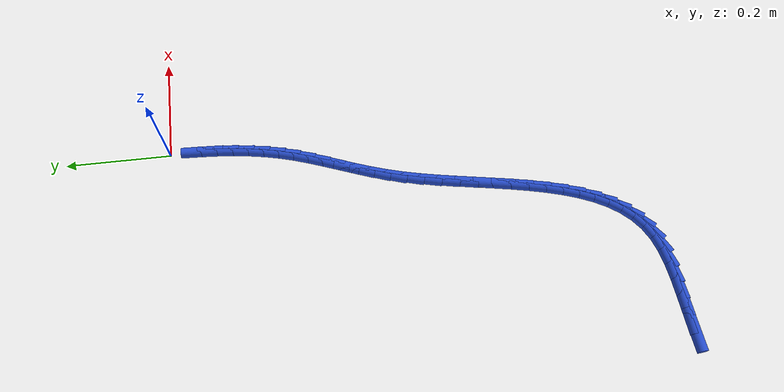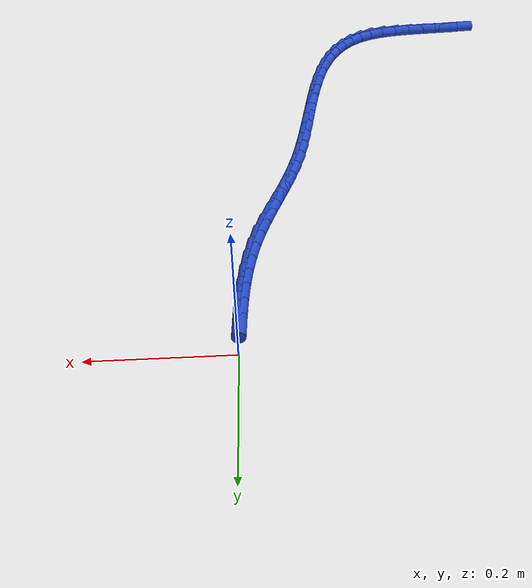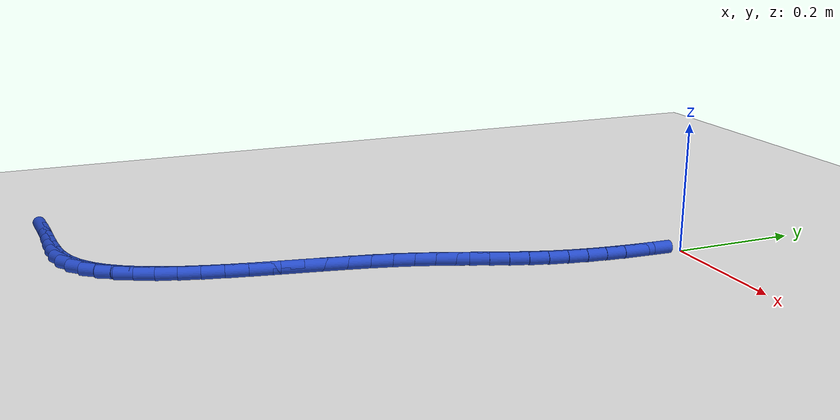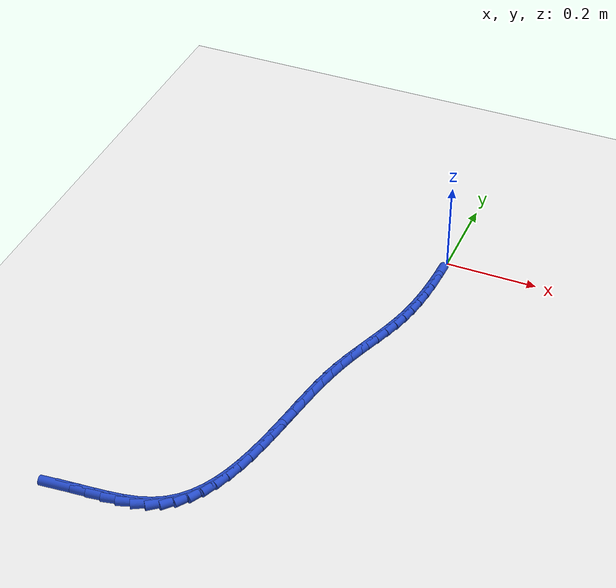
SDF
<sdf version="1.6">
 <world name="default">
  <model name="ground_plane">
   <static>1</static>
   <link name="link">
    <collision name="collision">
     <geometry><plane><normal>0 0 1</normal><size>100 100</size></plane></geometry>
     <surface><friction><ode><mu>100</mu><mu2>50</mu2></ode></friction></surface>
    </collision>
    <visual name="visual">
     <cast_shadows>0</cast_shadows>
     <geometry><plane><normal>0 0 1</normal><size>100 100</size></plane></geometry>
     <material>
      <script><uri>file://media/materials/scripts/gazebo.material</uri><name>Gazebo/WhiteGlow</name></script>
     </material>
    </visual>
   </link>
  </model>
  <model name="line">
   <link name="link_253">
    <pose>-0.4457957055428515 -0.910831914444147 0.01 0 1.57 0.09378508704343583</pose>
    <collision name="collision">
     <geometry><cylinder><radius>0.01</radius><length>0.08</length></cylinder></geometry>
    </collision>
    <visual name="visual">
     <material>
      <script><name>Gazebo/Blue</name><uri>file://media/materials/scripts/gazebo.material</uri></script>
     </material>
     <geometry><cylinder><radius>0.01</radius><length>0.08</length></cylinder></geometry>
    </visual>
   </link>
   <link name="link_254">
    <pose>-0.41372487961653465 -0.9078152996976164 0.01 0 1.57 0.07865819826071467</pose>
    <collision name="collision">
     <geometry><cylinder><radius>0.01</radius><length>0.08</length></cylinder></geometry>
    </collision>
    <visual name="visual">
     <material>
      <script><name>Gazebo/Blue</name><uri>file://media/materials/scripts/gazebo.material</uri></script>
     </material>
     <geometry><cylinder><radius>0.01</radius><length>0.08</length></cylinder></geometry>
    </visual>
   </link>
   <link name="link_255">
    <pose>-0.38184172162986924 -0.9053022429418041 0.01 0 1.57 0.09057604250113106</pose>
    <collision name="collision">
     <geometry><cylinder><radius>0.01</radius><length>0.08</length></cylinder></geometry>
    </collision>
    <visual name="visual">
     <material>
      <script><name>Gazebo/Blue</name><uri>file://media/materials/scripts/gazebo.material</uri></script>
     </material>
     <geometry><cylinder><radius>0.01</radius><length>0.08</length></cylinder></geometry>
    </visual>
   </link>
   <link name="link_256">
    <pose>-0.35068948913787124 -0.9024728553220365 0.01 0 1.57 0.13195519901484767</pose>
    <collision name="collision">
     <geometry><cylinder><radius>0.01</radius><length>0.08</length></cylinder></geometry>
    </collision>
    <visual name="visual">
     <material>
      <script><name>Gazebo/Blue</name><uri>file://media/materials/scripts/gazebo.material</uri></script>
     </material>
     <geometry><cylinder><radius>0.01</radius><length>0.08</length></cylinder></geometry>
    </visual>
   </link>
   <link name="link_257">
    <pose>-0.32081143969555664 -0.8985072479836409 0.01 0 1.57 0.20798140657950961</pose>
    <collision name="collision">
     <geometry><cylinder><radius>0.01</radius><length>0.08</length></cylinder></geometry>
    </collision>
    <visual name="visual">
     <material>
      <script><name>Gazebo/Blue</name><uri>file://media/materials/scripts/gazebo.material</uri></script>
     </material>
     <geometry><cylinder><radius>0.01</radius><length>0.08</length></cylinder></geometry>
    </visual>
   </link>
   <link name="link_258">
    <pose>-0.2927508308579414 -0.892585532071944 0.01 0 1.57 0.3263337513210692</pose>
    <collision name="collision">
     <geometry><cylinder><radius>0.01</radius><length>0.08</length></cylinder></geometry>
    </collision>
    <visual name="visual">
     <material>
      <script><name>Gazebo/Blue</name><uri>file://media/materials/scripts/gazebo.material</uri></script>
     </material>
     <geometry><cylinder><radius>0.01</radius><length>0.08</length></cylinder></geometry>
    </visual>
   </link>
   <link name="link_259">
    <pose>-0.26705092018004173 -0.8838878187322726 0.01 0 1.57 0.4907390667734935</pose>
    <collision name="collision">
     <geometry><cylinder><radius>0.01</radius><length>0.08</length></cylinder></geometry>
    </collision>
    <visual name="visual">
     <material>
      <script><name>Gazebo/Blue</name><uri>file://media/materials/scripts/gazebo.material</uri></script>
     </material>
     <geometry><cylinder><radius>0.01</radius><length>0.08</length></cylinder></geometry>
    </visual>
   </link>
   <link name="link_260">
    <pose>-0.24419711457930865 -0.8716761652776995 0.01 0 1.57 0.6671793209381301</pose>
    <collision name="collision">
     <geometry><cylinder><radius>0.01</radius><length>0.08</length></cylinder></geometry>
    </collision>
    <visual name="visual">
     <material>
      <script><name>Gazebo/Blue</name><uri>file://media/materials/scripts/gazebo.material</uri></script>
     </material>
     <geometry><cylinder><radius>0.01</radius><length>0.08</length></cylinder></geometry>
    </visual>
   </link>
   <link name="link_261">
    <pose>-0.2241819645160104 -0.8559107664941925 0.01 0 1.57 0.8285261775974498</pose>
    <collision name="collision">
     <geometry><cylinder><radius>0.01</radius><length>0.08</length></cylinder></geometry>
    </collision>
    <visual name="visual">
     <material>
      <script><name>Gazebo/Blue</name><uri>file://media/materials/scripts/gazebo.material</uri></script>
     </material>
     <geometry><cylinder><radius>0.01</radius><length>0.08</length></cylinder></geometry>
    </visual>
   </link>
   <link name="link_262">
    <pose>-0.20674869986701105 -0.8369049829617377 0.01 0 1.57 0.9674830487945775</pose>
    <collision name="collision">
     <geometry><cylinder><radius>0.01</radius><length>0.08</length></cylinder></geometry>
    </collision>
    <visual name="visual">
     <material>
      <script><name>Gazebo/Blue</name><uri>file://media/materials/scripts/gazebo.material</uri></script>
     </material>
     <geometry><cylinder><radius>0.01</radius><length>0.08</length></cylinder></geometry>
    </visual>
   </link>
   <link name="link_263">
    <pose>-0.19163861912200644 -0.8149749110949396 0.01 0 1.57 1.0821558583801782</pose>
    <collision name="collision">
     <geometry><cylinder><radius>0.01</radius><length>0.08</length></cylinder></geometry>
    </collision>
    <visual name="visual">
     <material>
      <script><name>Gazebo/Blue</name><uri>file://media/materials/scripts/gazebo.material</uri></script>
     </material>
     <geometry><cylinder><radius>0.01</radius><length>0.08</length></cylinder></geometry>
    </visual>
   </link>
   <link name="link_264">
    <pose>-0.17859302077069258 -0.7904366473084022 0.01 0 1.57 1.1740853696200682</pose>
    <collision name="collision">
     <geometry><cylinder><radius>0.01</radius><length>0.08</length></cylinder></geometry>
    </collision>
    <visual name="visual">
     <material>
      <script><name>Gazebo/Blue</name><uri>file://media/materials/scripts/gazebo.material</uri></script>
     </material>
     <geometry><cylinder><radius>0.01</radius><length>0.08</length></cylinder></geometry>
    </visual>
   </link>
   <link name="link_265">
    <pose>-0.16735320330276543 -0.7636062880167301 0.01 0 1.57 1.2462172420838193</pose>
    <collision name="collision">
     <geometry><cylinder><radius>0.01</radius><length>0.08</length></cylinder></geometry>
    </collision>
    <visual name="visual">
     <material>
      <script><name>Gazebo/Blue</name><uri>file://media/materials/scripts/gazebo.material</uri></script>
     </material>
     <geometry><cylinder><radius>0.01</radius><length>0.08</length></cylinder></geometry>
    </visual>
   </link>
   <link name="link_266">
    <pose>-0.15766046520792026 -0.7347999296345258 0.01 0 1.57 1.301632664364597</pose>
    <collision name="collision">
     <geometry><cylinder><radius>0.01</radius><length>0.08</length></cylinder></geometry>
    </collision>
    <visual name="visual">
     <material>
      <script><name>Gazebo/Blue</name><uri>file://media/materials/scripts/gazebo.material</uri></script>
     </material>
     <geometry><cylinder><radius>0.01</radius><length>0.08</length></cylinder></geometry>
    </visual>
   </link>
   <link name="link_267">
    <pose>-0.14925610497585326 -0.7043336685763938 0.01 0 1.57 1.3429859251031906</pose>
    <collision name="collision">
     <geometry><cylinder><radius>0.01</radius><length>0.08</length></cylinder></geometry>
    </collision>
    <visual name="visual">
     <material>
      <script><name>Gazebo/Blue</name><uri>file://media/materials/scripts/gazebo.material</uri></script>
     </material>
     <geometry><cylinder><radius>0.01</radius><length>0.08</length></cylinder></geometry>
    </visual>
   </link>
   <link name="link_268">
    <pose>-0.14188142109626037 -0.6725236012569381 0.01 0 1.57 1.3723423606740701</pose>
    <collision name="collision">
     <geometry><cylinder><radius>0.01</radius><length>0.08</length></cylinder></geometry>
    </collision>
    <visual name="visual">
     <material>
      <script><name>Gazebo/Blue</name><uri>file://media/materials/scripts/gazebo.material</uri></script>
     </material>
     <geometry><cylinder><radius>0.01</radius><length>0.08</length></cylinder></geometry>
    </visual>
   </link>
   <link name="link_269">
    <pose>-0.13527771205883732 -0.6396858240907628 0.01 0 1.57 1.391186746338014</pose>
    <collision name="collision">
     <geometry><cylinder><radius>0.01</radius><length>0.08</length></cylinder></geometry>
    </collision>
    <visual name="visual">
     <material>
      <script><name>Gazebo/Blue</name><uri>file://media/materials/scripts/gazebo.material</uri></script>
     </material>
     <geometry><cylinder><radius>0.01</radius><length>0.08</length></cylinder></geometry>
    </visual>
   </link>
   <link name="link_270">
    <pose>-0.12918627635328006 -0.6061364334924716 0.01 0 1.57 1.4004818818305276</pose>
    <collision name="collision">
     <geometry><cylinder><radius>0.01</radius><length>0.08</length></cylinder></geometry>
    </collision>
    <visual name="visual">
     <material>
      <script><name>Gazebo/Blue</name><uri>file://media/materials/scripts/gazebo.material</uri></script>
     </material>
     <geometry><cylinder><radius>0.01</radius><length>0.08</length></cylinder></geometry>
    </visual>
   </link>
   <link name="link_271">
    <pose>-0.12334841246928435 -0.5721915258766684 0.01 0 1.57 1.4007253674870392</pose>
    <collision name="collision">
     <geometry><cylinder><radius>0.01</radius><length>0.08</length></cylinder></geometry>
    </collision>
    <visual name="visual">
     <material>
      <script><name>Gazebo/Blue</name><uri>file://media/materials/scripts/gazebo.material</uri></script>
     </material>
     <geometry><cylinder><radius>0.01</radius><length>0.08</length></cylinder></geometry>
    </visual>
   </link>
   <link name="link_272">
    <pose>-0.1175054188965461 -0.5381671976579574 0.01 0 1.57 1.3919854300189143</pose>
    <collision name="collision">
     <geometry><cylinder><radius>0.01</radius><length>0.08</length></cylinder></geometry>
    </collision>
    <visual name="visual">
     <material>
      <script><name>Gazebo/Blue</name><uri>file://media/materials/scripts/gazebo.material</uri></script>
     </material>
     <geometry><cylinder><radius>0.01</radius><length>0.08</length></cylinder></geometry>
    </visual>
   </link>
   <link name="link_273">
    <pose>-0.11139859412476115 -0.5043795452509424 0.01 0 1.57 1.373910551964904</pose>
    <collision name="collision">
     <geometry><cylinder><radius>0.01</radius><length>0.08</length></cylinder></geometry>
    </collision>
    <visual name="visual">
     <material>
      <script><name>Gazebo/Blue</name><uri>file://media/materials/scripts/gazebo.material</uri></script>
     </material>
     <geometry><cylinder><radius>0.01</radius><length>0.08</length></cylinder></geometry>
    </visual>
   </link>
   <link name="link_274">
    <pose>-0.10476923664362534 -0.47114466507022723 0.01 0 1.57 1.3457138648694225</pose>
    <collision name="collision">
     <geometry><cylinder><radius>0.01</radius><length>0.08</length></cylinder></geometry>
    </collision>
    <visual name="visual">
     <material>
      <script><name>Gazebo/Blue</name><uri>file://media/materials/scripts/gazebo.material</uri></script>
     </material>
     <geometry><cylinder><radius>0.01</radius><length>0.08</length></cylinder></geometry>
    </visual>
   </link>
   <link name="link_275">
    <pose>-0.09735864494283457 -0.438778653530416 0.01 0 1.57 1.3063916057190077</pose>
    <collision name="collision">
     <geometry><cylinder><radius>0.01</radius><length>0.08</length></cylinder></geometry>
    </collision>
    <visual name="visual">
     <material>
      <script><name>Gazebo/Blue</name><uri>file://media/materials/scripts/gazebo.material</uri></script>
     </material>
     <geometry><cylinder><radius>0.01</radius><length>0.08</length></cylinder></geometry>
    </visual>
   </link>
   <link name="link_276">
    <pose>-0.08891488604562486 -0.40759135730744017 0.01 0 1.57 1.2646362070561534</pose>
    <collision name="collision">
     <geometry><cylinder><radius>0.01</radius><length>0.08</length></cylinder></geometry>
    </collision>
    <visual name="visual">
     <material>
      <script><name>Gazebo/Blue</name><uri>file://media/materials/scripts/gazebo.material</uri></script>
     </material>
     <geometry><cylinder><radius>0.01</radius><length>0.08</length></cylinder></geometry>
    </visual>
   </link>
   <link name="link_277">
    <pose>-0.07945008203366663 -0.37764880732297407 0.01 0 1.57 1.2341823188570218</pose>
    <collision name="collision">
     <geometry><cylinder><radius>0.01</radius><length>0.08</length></cylinder></geometry>
    </collision>
    <visual name="visual">
     <material>
      <script><name>Gazebo/Blue</name><uri>file://media/materials/scripts/gazebo.material</uri></script>
     </material>
     <geometry><cylinder><radius>0.01</radius><length>0.08</length></cylinder></geometry>
    </visual>
   </link>
   <link name="link_278">
    <pose>-0.06931990986338837 -0.3486998124336623 0.01 0 1.57 1.2172725642456506</pose>
    <collision name="collision">
     <geometry><cylinder><radius>0.01</radius><length>0.08</length></cylinder></geometry>
    </collision>
    <visual name="visual">
     <material>
      <script><name>Gazebo/Blue</name><uri>file://media/materials/scripts/gazebo.material</uri></script>
     </material>
     <geometry><cylinder><radius>0.01</radius><length>0.08</length></cylinder></geometry>
    </visual>
   </link>
   <link name="link_279">
    <pose>-0.058903061041316214 -0.32047193096633897 0.01 0 1.57 1.2149440271706848</pose>
    <collision name="collision">
     <geometry><cylinder><radius>0.01</radius><length>0.08</length></cylinder></geometry>
    </collision>
    <visual name="visual">
     <material>
      <script><name>Gazebo/Blue</name><uri>file://media/materials/scripts/gazebo.material</uri></script>
     </material>
     <geometry><cylinder><radius>0.01</radius><length>0.08</length></cylinder></geometry>
    </visual>
   </link>
   <link name="link_280">
    <pose>-0.04857822707397658 -0.2926927212478391 0.01 0 1.57 1.227903463054376</pose>
    <collision name="collision">
     <geometry><cylinder><radius>0.01</radius><length>0.08</length></cylinder></geometry>
    </collision>
    <visual name="visual">
     <material>
      <script><name>Gazebo/Blue</name><uri>file://media/materials/scripts/gazebo.material</uri></script>
     </material>
     <geometry><cylinder><radius>0.01</radius><length>0.08</length></cylinder></geometry>
    </visual>
   </link>
   <link name="link_281">
    <pose>-0.03872409946789488 -0.265089741604995 0.01 0 1.57 1.2564830391099686</pose>
    <collision name="collision">
     <geometry><cylinder><radius>0.01</radius><length>0.08</length></cylinder></geometry>
    </collision>
    <visual name="visual">
     <material>
      <script><name>Gazebo/Blue</name><uri>file://media/materials/scripts/gazebo.material</uri></script>
     </material>
     <geometry><cylinder><radius>0.01</radius><length>0.08</length></cylinder></geometry>
    </visual>
   </link>
   <link name="link_282">
    <pose>-0.029719369729597534 -0.23739055036464146 0.01 0 1.57 1.3004827739665203</pose>
    <collision name="collision">
     <geometry><cylinder><radius>0.01</radius><length>0.08</length></cylinder></geometry>
    </collision>
    <visual name="visual">
     <material>
      <script><name>Gazebo/Blue</name><uri>file://media/materials/scripts/gazebo.material</uri></script>
     </material>
     <geometry><cylinder><radius>0.01</radius><length>0.08</length></cylinder></geometry>
    </visual>
   </link>
   <link name="link_283">
    <pose>-0.0219420101296501 -0.2093231403379683 0.01 0 1.57 1.3532550230671325</pose>
    <collision name="collision">
     <geometry><cylinder><radius>0.01</radius><length>0.08</length></cylinder></geometry>
    </collision>
    <visual name="visual">
     <material>
      <script><name>Gazebo/Blue</name><uri>file://media/materials/scripts/gazebo.material</uri></script>
     </material>
     <geometry><cylinder><radius>0.01</radius><length>0.08</length></cylinder></geometry>
    </visual>
   </link>
   <link name="link_284">
    <pose>-0.015616935023649843 -0.18070796532699865 0.01 0 1.57 1.401187854704707</pose>
    <collision name="collision">
     <geometry><cylinder><radius>0.01</radius><length>0.08</length></cylinder></geometry>
    </collision>
    <visual name="visual">
     <material>
      <script><name>Gazebo/Blue</name><uri>file://media/materials/scripts/gazebo.material</uri></script>
     </material>
     <geometry><cylinder><radius>0.01</radius><length>0.08</length></cylinder></geometry>
    </visual>
   </link>
   <link name="link_285">
    <pose>-0.010627281124571404 -0.1515719441145976 0.01 0 1.57 1.442547069518549</pose>
    <collision name="collision">
     <geometry><cylinder><radius>0.01</radius><length>0.08</length></cylinder></geometry>
    </collision>
    <visual name="visual">
     <material>
      <script><name>Gazebo/Blue</name><uri>file://media/materials/scripts/gazebo.material</uri></script>
     </material>
     <geometry><cylinder><radius>0.01</radius><length>0.08</length></cylinder></geometry>
    </visual>
   </link>
   <link name="link_286">
    <pose>-0.006809896154328887 -0.12196995827130444 0.01 0 1.57 1.477499781735971</pose>
    <collision name="collision">
     <geometry><cylinder><radius>0.01</radius><length>0.08</length></cylinder></geometry>
    </collision>
    <visual name="visual">
     <material>
      <script><name>Gazebo/Blue</name><uri>file://media/materials/scripts/gazebo.material</uri></script>
     </material>
     <geometry><cylinder><radius>0.01</radius><length>0.08</length></cylinder></geometry>
    </visual>
   </link>
   <link name="link_287">
    <pose>-0.004001627834836387 -0.09195688936765867 0.01 0 1.57 1.5062712386741874</pose>
    <collision name="collision">
     <geometry><cylinder><radius>0.01</radius><length>0.08</length></cylinder></geometry>
    </collision>
    <visual name="visual">
     <material>
      <script><name>Gazebo/Blue</name><uri>file://media/materials/scripts/gazebo.material</uri></script>
     </material>
     <geometry><cylinder><radius>0.01</radius><length>0.08</length></cylinder></geometry>
    </visual>
   </link>
   <link name="link_288">
    <pose>-0.0020393238880080057 -0.061587618974199704 0.01 0 1.57 1.5291032791980543</pose>
    <collision name="collision">
     <geometry><cylinder><radius>0.01</radius><length>0.08</length></cylinder></geometry>
    </collision>
    <visual name="visual">
     <material>
      <script><name>Gazebo/Blue</name><uri>file://media/materials/scripts/gazebo.material</uri></script>
     </material>
     <geometry><cylinder><radius>0.01</radius><length>0.08</length></cylinder></geometry>
    </visual>
   </link>
  </model>
 </world>
</sdf>
